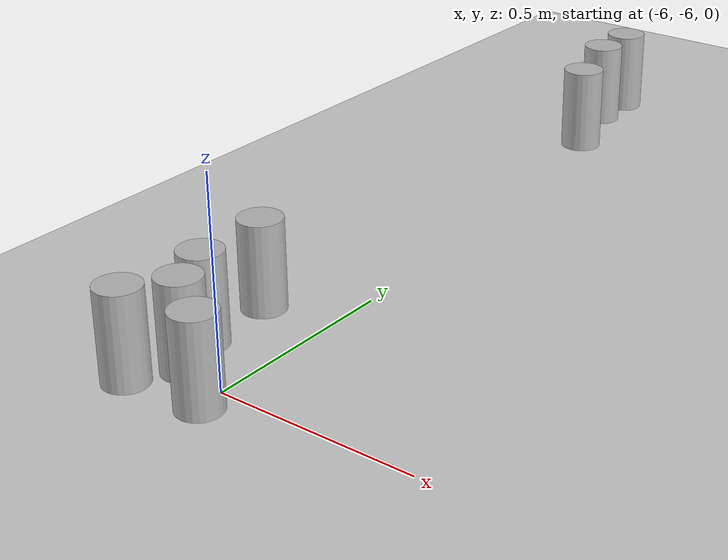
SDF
<sdf version="1.6">
 <world name="default">
  <model name="ground_plane">
   <static>1</static>
   <link name="link">
    <collision name="collision">
     <geometry><plane><normal>0 0 1</normal><size>100 100</size></plane></geometry>
     <surface>
      <contact><collide_bitmask>65535</collide_bitmask></contact>
      <friction><ode><mu>100</mu><mu2>50</mu2></ode></friction>
     </surface>
    </collision>
    <visual name="visual">
     <cast_shadows>0</cast_shadows>
     <geometry><plane><normal>0 0 1</normal><size>100 100</size></plane></geometry>
     <material>
      <script><uri>file://media/materials/scripts/gazebo.material</uri><name>Gazebo/Grey</name></script>
     </material>
    </visual>
   </link>
  </model>
  <model name="beer_6">
   <link name="link">
    <pose>0 0 0.115 0 -0 0</pose>
    <inertial>
     <mass>0.39</mass>
     <inertia><ixx>0.00058</ixx><ixy>0</ixy><ixz>0</ixz><iyy>0.00058</iyy><iyz>0</iyz><izz>0.00019</izz></inertia>
    </inertial>
    <collision name="collision">
     <geometry><cylinder><radius>0.055</radius><length>0.23</length></cylinder></geometry>
    </collision>
    <visual name="visual">
     <geometry><cylinder><radius>0.055</radius><length>0.23</length></cylinder></geometry>
     <material>
      <script>
       <uri>model://beer/materials/scripts</uri>
       <uri>model://beer/materials/textures</uri>
       <name>Beer/Diffuse</name>
      </script>
     </material>
    </visual>
   </link>
   <pose>-5.99151 -6.07115 -2e-06 1e-06 0 -1e-06</pose>
  </model>
  <model name="beer_7">
   <link name="link">
    <pose>0 0 0.115 0 -0 0</pose>
    <inertial>
     <mass>0.39</mass>
     <inertia><ixx>0.00058</ixx><ixy>0</ixy><ixz>0</ixz><iyy>0.00058</iyy><iyz>0</iyz><izz>0.00019</izz></inertia>
    </inertial>
    <collision name="collision">
     <geometry><cylinder><radius>0.055</radius><length>0.23</length></cylinder></geometry>
    </collision>
    <visual name="visual">
     <geometry><cylinder><radius>0.055</radius><length>0.23</length></cylinder></geometry>
     <material>
      <script>
       <uri>model://beer/materials/scripts</uri>
       <uri>model://beer/materials/textures</uri>
       <name>Beer/Diffuse</name>
      </script>
     </material>
    </visual>
   </link>
   <pose>-6.19047 -6.08712 -2e-06 1e-06 0 -1e-06</pose>
  </model>
  <model name="beer_8">
   <link name="link">
    <pose>0 0 0.115 0 -0 0</pose>
    <inertial>
     <mass>0.39</mass>
     <inertia><ixx>0.00058</ixx><ixy>0</ixy><ixz>0</ixz><iyy>0.00058</iyy><iyz>0</iyz><izz>0.00019</izz></inertia>
    </inertial>
    <collision name="collision">
     <geometry><cylinder><radius>0.055</radius><length>0.23</length></cylinder></geometry>
    </collision>
    <visual name="visual">
     <geometry><cylinder><radius>0.055</radius><length>0.23</length></cylinder></geometry>
     <material>
      <script>
       <uri>model://beer/materials/scripts</uri>
       <uri>model://beer/materials/textures</uri>
       <name>Beer/Diffuse</name>
      </script>
     </material>
    </visual>
   </link>
   <pose>-6.12148 -5.98238 -2e-06 1e-06 0 -1e-06</pose>
  </model>
  <model name="beer_10">
   <link name="link">
    <pose>0 0 0.115 0 -0 0</pose>
    <inertial>
     <mass>0.39</mass>
     <inertia><ixx>0.00058</ixx><ixy>0</ixy><ixz>0</ixz><iyy>0.00058</iyy><iyz>0</iyz><izz>0.00019</izz></inertia>
    </inertial>
    <collision name="collision">
     <geometry><cylinder><radius>0.055</radius><length>0.23</length></cylinder></geometry>
    </collision>
    <visual name="visual">
     <geometry><cylinder><radius>0.055</radius><length>0.23</length></cylinder></geometry>
     <material>
      <script>
       <uri>model://beer/materials/scripts</uri>
       <uri>model://beer/materials/textures</uri>
       <name>Beer/Diffuse</name>
      </script>
     </material>
    </visual>
   </link>
   <pose>-6.16938 -5.86997 -2e-06 1e-06 0 -1e-06</pose>
  </model>
  <model name="beer_11">
   <link name="link">
    <pose>0 0 0.115 0 -0 0</pose>
    <inertial>
     <mass>0.39</mass>
     <inertia><ixx>0.00058</ixx><ixy>0</ixy><ixz>0</ixz><iyy>0.00058</iyy><iyz>0</iyz><izz>0.00019</izz></inertia>
    </inertial>
    <collision name="collision">
     <geometry><cylinder><radius>0.055</radius><length>0.23</length></cylinder></geometry>
    </collision>
    <visual name="visual">
     <geometry><cylinder><radius>0.055</radius><length>0.23</length></cylinder></geometry>
     <material>
      <script>
       <uri>model://beer/materials/scripts</uri>
       <uri>model://beer/materials/textures</uri>
       <name>Beer/Diffuse</name>
      </script>
     </material>
    </visual>
   </link>
   <pose>-6.17635 -5.67249 -2e-06 1e-06 0 -1e-06</pose>
  </model>
  <model name="beer_12">
   <link name="link">
    <pose>0 0 0.115 0 -0 0</pose>
    <inertial>
     <mass>0.39</mass>
     <inertia><ixx>0.00058</ixx><ixy>0</ixy><ixz>0</ixz><iyy>0.00058</iyy><iyz>0</iyz><izz>0.00019</izz></inertia>
    </inertial>
    <collision name="collision">
     <geometry><cylinder><radius>0.055</radius><length>0.23</length></cylinder></geometry>
    </collision>
    <visual name="visual">
     <geometry><cylinder><radius>0.055</radius><length>0.23</length></cylinder></geometry>
     <material>
      <script>
       <uri>model://beer/materials/scripts</uri>
       <uri>model://beer/materials/textures</uri>
       <name>Beer/Diffuse</name>
      </script>
     </material>
    </visual>
   </link>
   <pose>-6.17606 -4.02391 -2e-06 1e-06 0 -1e-06</pose>
  </model>
  <model name="beer_13">
   <link name="link">
    <pose>0 0 0.115 0 -0 0</pose>
    <inertial>
     <mass>0.39</mass>
     <inertia><ixx>0.00058</ixx><ixy>0</ixy><ixz>0</ixz><iyy>0.00058</iyy><iyz>0</iyz><izz>0.00019</izz></inertia>
    </inertial>
    <collision name="collision">
     <geometry><cylinder><radius>0.055</radius><length>0.23</length></cylinder></geometry>
    </collision>
    <visual name="visual">
     <geometry><cylinder><radius>0.055</radius><length>0.23</length></cylinder></geometry>
     <material>
      <script>
       <uri>model://beer/materials/scripts</uri>
       <uri>model://beer/materials/textures</uri>
       <name>Beer/Diffuse</name>
      </script>
     </material>
    </visual>
   </link>
   <pose>-6.17463 -4.16269 -2e-06 1e-06 0 -1e-06</pose>
  </model>
  <model name="beer_15">
   <link name="link">
    <pose>0 0 0.115 0 -0 0</pose>
    <inertial>
     <mass>0.39</mass>
     <inertia><ixx>0.00058</ixx><ixy>0</ixy><ixz>0</ixz><iyy>0.00058</iyy><iyz>0</iyz><izz>0.00019</izz></inertia>
    </inertial>
    <collision name="collision">
     <geometry><cylinder><radius>0.055</radius><length>0.23</length></cylinder></geometry>
    </collision>
    <visual name="visual">
     <geometry><cylinder><radius>0.055</radius><length>0.23</length></cylinder></geometry>
     <material>
      <script>
       <uri>model://beer/materials/scripts</uri>
       <uri>model://beer/materials/textures</uri>
       <name>Beer/Diffuse</name>
      </script>
     </material>
    </visual>
   </link>
   <pose>-6.11124 -4.38135 -2e-06 1e-06 0 -1e-06</pose>
  </model>
 </world>
</sdf>
